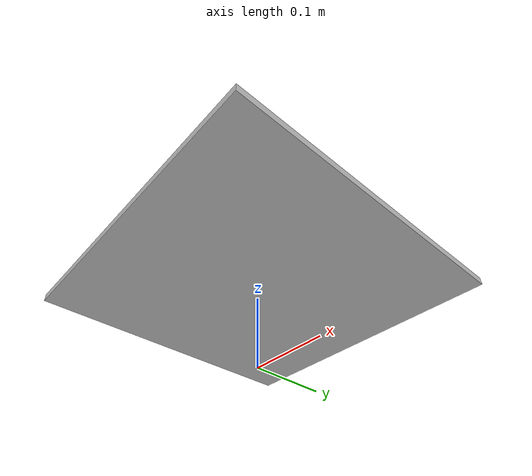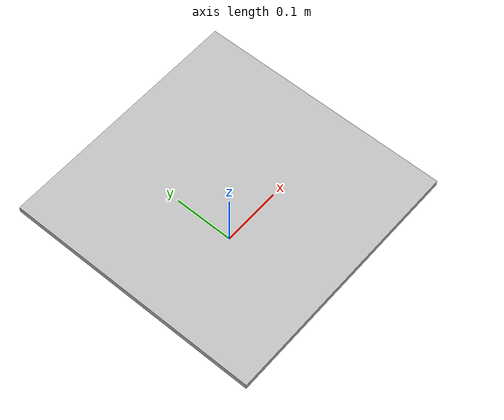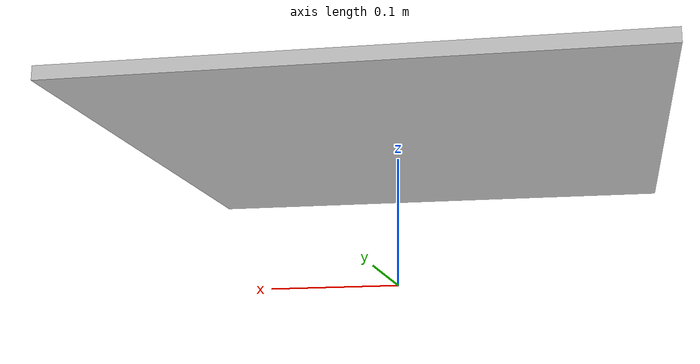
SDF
<?xml version="1.0" encoding="UTF-8"?>
<sdf version="1.4">
	<model name="land_mark">
    	<static>true</static>
    	<link name="link">
			<pose>0 0 0.115 0 0 0</pose>
    		<inertial>
        		<mass>0.390</mass>
        		<inertia>
          			<ixx>0.00058</ixx>
          			<ixy>0</ixy>
          			<ixz>0</ixz>
          			<iyy>0.00058</iyy>
          			<iyz>0</iyz>
          			<izz>0.00019</izz>
        		</inertia>
			</inertial>

        	<collision name='collision'>
        		<geometry>
                	<box>
                  		<size>.41 .41 .01</size>
                	</box>
        		</geometry>
      		</collision>

         	<visual name="visual">
            	<cast_shadows>false</cast_shadows>
            	<geometry>
               		<box>
                		<size>.41 .41 .01</size>
                	</box>
            	</geometry>
            	<material>
               		<script>
                		<uri>model://land_mark/materials/scripts</uri>
                		<uri>model://land_mark/materials/textures/</uri>
                		<name>Mark/Image</name>
               		</script>
            	</material>
        	</visual>
      	</link>
   </model>
</sdf>
